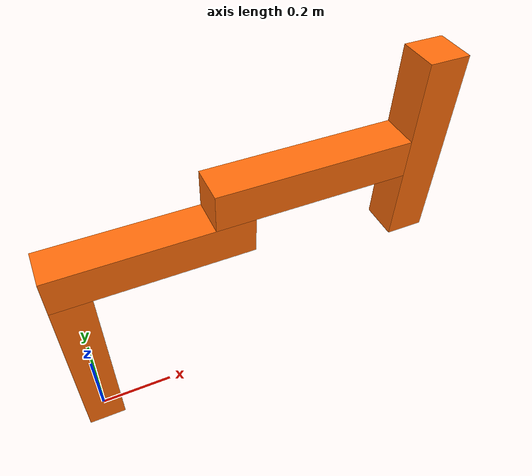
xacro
<?xml version="1.0"?>
<!-- Revolute-Revolute-Prismatic Manipulator -->
<robot name="rrpbot" xmlns:xacro="http://www.ros.org/wiki/xacro">

  <!-- Constants for robot dimensions -->
  <xacro:property name="PI" value="3.1415926535897931"/>
  <xacro:property name="mass" value="1" />
  <xacro:property name="width" value="0.1" /> <!-- Square sizes -->
  <xacro:property name="height1" value="0.5" /> <!-- Link 1 -->
  <xacro:property name="height2" value="0.5" /> <!-- Link 2 -->
  <xacro:property name="height3" value="0.5" /> <!-- Link 3 -->
  <xacro:property name="height4" value="0.5" /> <!-- Link 4 -->
  <xacro:property name="axel_offset" value="0.05" /> <!-- Space between top of link and each joint -->

  <xacro:include filename="$(find final_project)/urdf/rrpbot.gazebo" />
  <xacro:include filename="$(find final_project)/urdf/materials.xacro" />

  <!-- fix base_frame to world  -->
  <link name="world"/>

  <joint name="joint0" type="fixed">
    <parent link="world"/>
    <child link="link1"/>
  </joint>

  <!-- Base Link -->
  <link name="link1">
    <collision>
      <origin xyz="0 0 ${height1/2}" rpy="0 0 0"/>
      <geometry>
	<box size="${width} ${width} ${height1}"/>
      </geometry>
    </collision>

    <visual>
      <origin xyz="0 0 ${height1/2}" rpy="0 0 0"/>
      <geometry>
	<box size="${width} ${width} ${height1}"/>
      </geometry>
      <material name="orange"/>
    </visual>

    <inertial>
      <origin xyz="0 0 ${height1/2}" rpy="0 0 0"/>
      <mass value="${mass}"/>
      <inertia
	  ixx="${mass / 12.0 * (width*width + height1*height1)}" ixy="0.0" ixz="0.0"
	  iyy="${mass / 12.0 * (height1*height1 + width*width)}" iyz="0.0"
	  izz="${mass / 12.0 * (width*width + width*width)}"/>
    </inertial>
  </link>

  <joint name="joint1" type="continuous">
    <parent link="link1"/>
    <child link="link2"/>
    <origin xyz="0 0 ${height1 + axel_offset}" rpy="0 0 0"/>
    <axis xyz="0 0 1"/>
    <dynamics damping="0.7"/>
  </joint>

  <!-- Middle Link 1-->
  <link name="link2">
    <collision>
      <origin xyz="${height2/2 - axel_offset} 0 0" rpy="0 0 0"/>
      <geometry>
	<box size="${height2} ${width} ${width}"/>
      </geometry>
    </collision>

    <visual>
      <origin xyz="${height2/2 - axel_offset} 0 0" rpy="0 0 0"/>
      <geometry>
	<box size="${height2} ${width} ${width}"/>
      </geometry>
      <material name="orange"/>
    </visual>

    <inertial>
      <origin xyz="${height2/2 - axel_offset} 0 0" rpy="0 0 0"/>
      <mass value="${mass}"/>
      <inertia
	  ixx="${mass / 12.0 * (width*width + height2*height2)}" ixy="0.0" ixz="0.0"
	  iyy="${mass / 12.0 * (height2*height2 + width*width)}" iyz="0.0"
	  izz="${mass / 12.0 * (width*width + width*width)}"/>
    </inertial>
  </link>

  <joint name="joint2" type="continuous">
    <parent link="link2"/>
    <child link="link3"/>
    <origin xyz="${height2 - width} 0 ${width}" rpy="0 0 0"/>
    <axis xyz="0 0 1"/>
    <dynamics damping="0.7"/>
  </joint>

  <!-- Middle Link 2-->
  <link name="link3">
    <collision>
      <origin xyz="${height3/2 - axel_offset} 0 0" rpy="0 0 0"/>
      <geometry>
	<box size="${height3} ${width} ${width} "/>
      </geometry>
    </collision>

    <visual>
      <origin xyz="${height3/2 - axel_offset} 0 0" rpy="0 0 0"/>
      <geometry>
	<box size="${height3} ${width} ${width} "/>
      </geometry>
      <material name="orange"/>
    </visual>

    <inertial>
      <origin xyz="${height3/2 - axel_offset} 0 0" rpy="0 0 0"/>
      <mass value="${mass}"/>
      <inertia
	  ixx="${mass / 12.0 * (width*width + height3*height3)}" ixy="0.0" ixz="0.0"
	  iyy="${mass / 12.0 * (height3*height3 + width*width)}" iyz="0.0"
	  izz="${mass / 12.0 * (width*width + width*width)}"/>
    </inertial>
  </link>

  <joint name="joint3" type="prismatic">
    <parent link="link3"/>
    <child link="link4"/>
    <origin xyz="${height4} 0 0" rpy="${PI} 0 0"/>
    <limit effort="1000.0" lower="-0.25" upper="0.25" velocity="0.5"/>
    <axis xyz="0 0 1"/>
    <dynamics damping="0.7"/>
  </joint>

  <!-- End effector -->
  <link name="link4">
    <collision>
      <origin xyz="0 0 0" rpy="0 0 0"/>
      <geometry>
	<box size="${width} ${width} ${height4}"/>
      </geometry>
    </collision>

    <visual>
      <origin xyz="0 0 0" rpy="0 0 0"/>
      <geometry>
	<box size="${width} ${width} ${height4}"/>
      </geometry>
      <material name="orange"/>
    </visual>

    <inertial>
      <origin xyz="0 0 0" rpy="0 0 0"/>
      <mass value="${mass}"/>
      <inertia
	  ixx="${mass / 12.0 * (width*width + height3*height3)}" ixy="0.0" ixz="0.0"
	  iyy="${mass / 12.0 * (height3*height3 + width*width)}" iyz="0.0"
	  izz="${mass / 12.0 * (width*width + width*width)}"/>
    </inertial>
  </link>
  <transmission name="rot1_trans">
    <type>transmission_interface/SimpleTransmission</type>
    <joint name="joint1">
      <hardwareInterface>hardware_interface/PositionJointInterface</hardwareInterface>
    </joint>
    <actuator name="motor1">
      <mechanicalReduction>1</mechanicalReduction>
    </actuator>
  </transmission>
  <transmission name="rot2_trans">
    <type>transmission_interface/SimpleTransmission</type>
    <joint name="joint2">
      <hardwareInterface>hardware_interface/PositionJointInterface</hardwareInterface>
    </joint>
    <actuator name="motor2">
      <mechanicalReduction>1</mechanicalReduction>
    </actuator>
  </transmission>
  <transmission name="lin1_trans">
    <type>transmission_interface/SimpleTransmission</type>
    <joint name="joint3">
      <hardwareInterface>hardware_interface/PositionJointInterface</hardwareInterface>
    </joint>
    <actuator name="piston1">
      <mechanicalReduction>1</mechanicalReduction>
    </actuator>
  </transmission>

  <gazebo>
   <plugin name="gazebo_ros_control" filename="libgazebo_ros_control.so">
    <robotNamespace>/</robotNamespace>
   </plugin>
  </gazebo>
</robot>

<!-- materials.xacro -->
<robot>

  <material name="black">
    <color rgba="0.0 0.0 0.0 1.0"/>
  </material>

  <material name="grey">
    <color rgba="0.2 0.2 0.2 1.0"/>
  </material>

  <material name="orange">
    <color rgba="${255/255} ${108/255} ${10/255} 1.0"/>
  </material>

  <material name="red">
    <color rgba="0.8 0.0 0.0 1.0"/>
  </material>

</robot>
